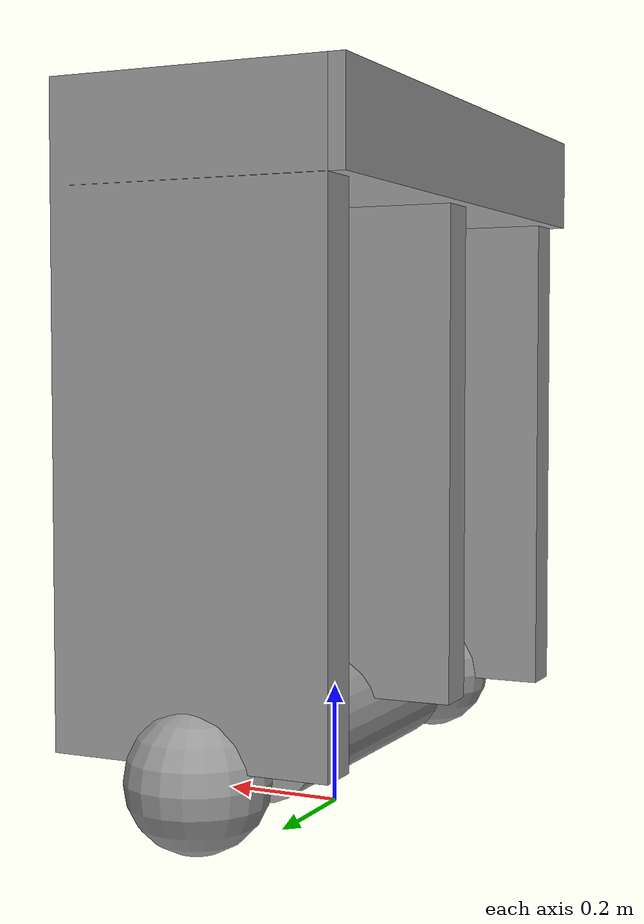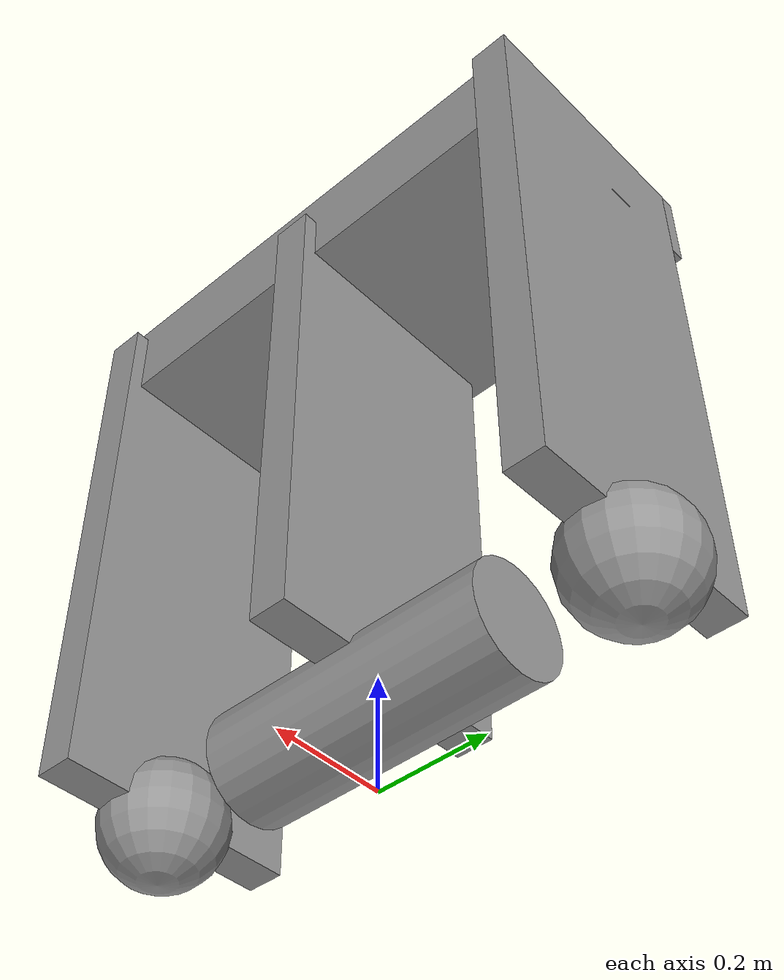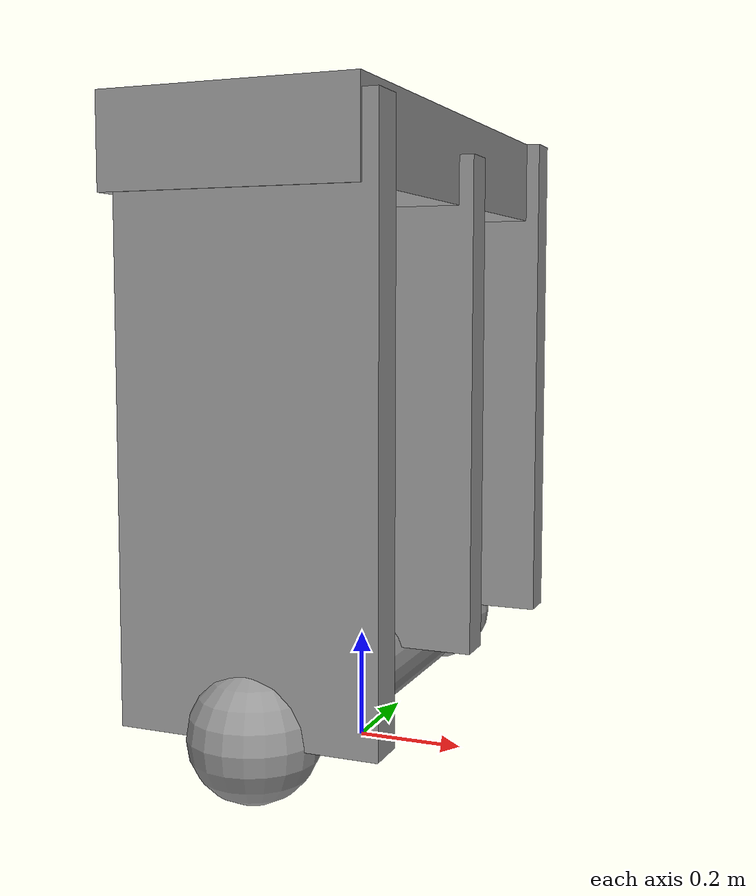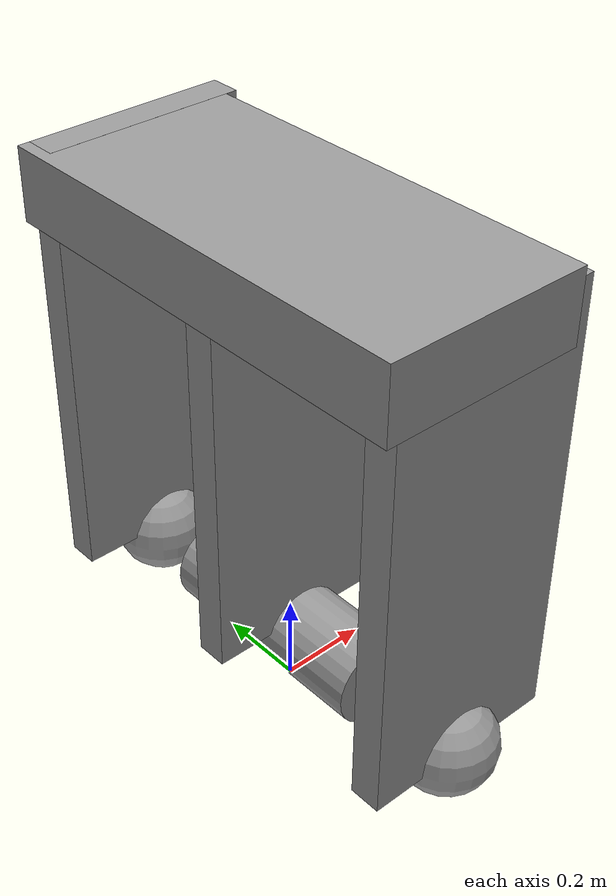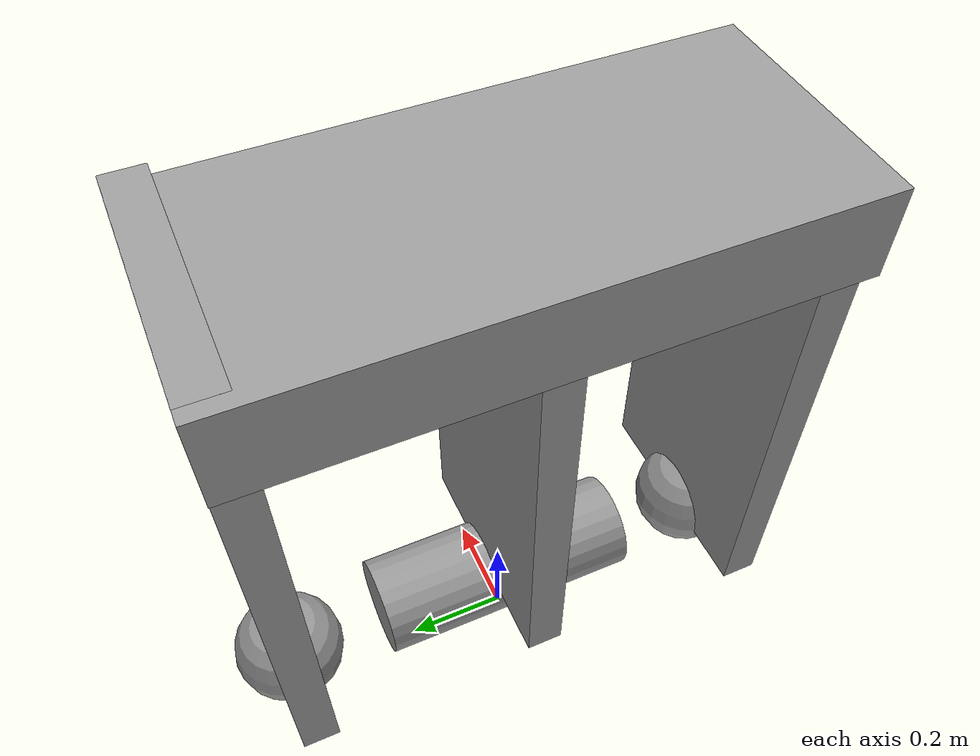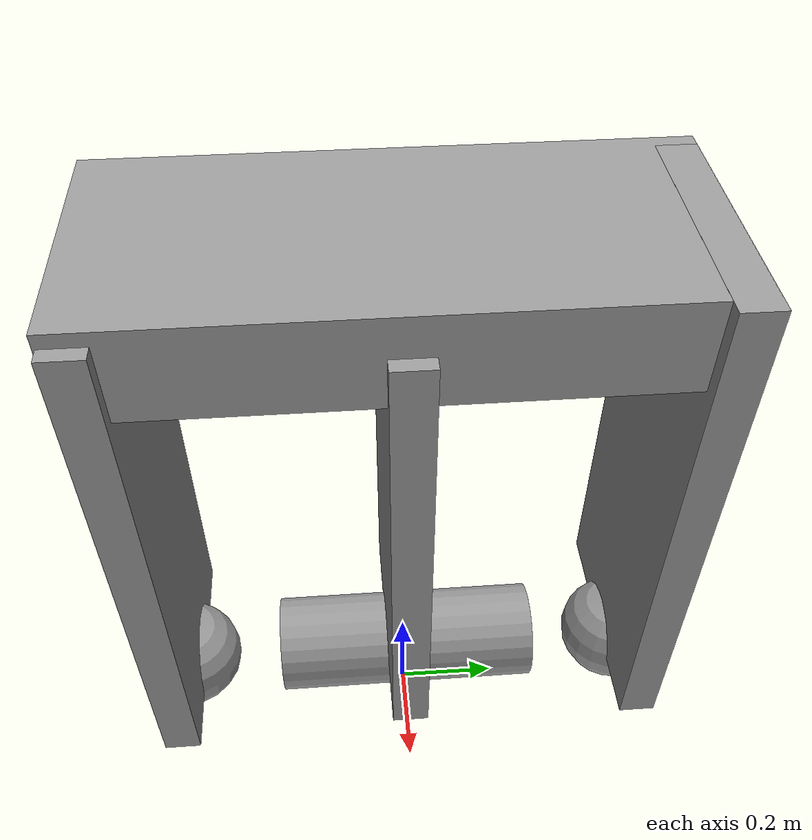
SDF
<?xml version='1.0'?>
<sdf version='1.5'>
  <model name='passive_walker3'>
    <pose>0 0 .5 0 0 1.57</pose>
    <link name='link_0'>
      <pose>-0.463051 -0.00381 0.144647 0 0 0</pose>
      <inertial>
        <mass>1</mass>
        <pose>0 0 0 0 -0 0</pose>
        <inertia>
          <ixx>0.001</ixx>
          <ixy>0</ixy>
          <ixz>0</ixz>
          <iyy>0.001</iyy>
          <iyz>0</iyz>
          <izz>0.001</izz>
        </inertia>
      </inertial>
      <self_collide>0</self_collide>
      <kinematic>0</kinematic>
      <visual name='visual'>
        <pose>0 0 0 0 -0 0</pose>
        <geometry>
          <box>
            <size>0.07 0.450331 1</size>
          </box>
        </geometry>
        <material>
          <lighting>1</lighting>
          <script>
            <uri>file://media/materials/scripts/gazebo.material</uri>
            <name>Gazebo/Grey</name>
          </script>
          <shader type='pixel'>
            <normal_map>__default__</normal_map>
          </shader>
          <ambient>0.3 0.3 0.3 1</ambient>
          <diffuse>0.7 0.7 0.7 1</diffuse>
          <specular>0.01 0.01 0.01 1</specular>
          <emissive>0 0 0 1</emissive>
        </material>
        <cast_shadows>1</cast_shadows>
        <transparency>0</transparency>
      </visual>
      <collision name='collision'>
        <laser_retro>0</laser_retro>
        <max_contacts>10</max_contacts>
        <pose>0 0 0 0 -0 0</pose>
        <geometry>
          <box>
            <size>0.07 0.450331 1</size>
          </box>
        </geometry>
        <surface>
          <friction>
            <ode>
              <mu>1</mu>
              <mu2>1</mu2>
              <fdir1>0 0 0</fdir1>
              <slip1>0</slip1>
              <slip2>0</slip2>
            </ode>
          </friction>
          <bounce>
            <restitution_coefficient>0</restitution_coefficient>
            <threshold>1e+06</threshold>
          </bounce>
          <contact>
            <collide_without_contact>0</collide_without_contact>
            <collide_without_contact_bitmask>1</collide_without_contact_bitmask>
            <collide_bitmask>1</collide_bitmask>
            <ode>
              <soft_cfm>0</soft_cfm>
              <soft_erp>0.2</soft_erp>
              <kp>1e+13</kp>
              <kd>1</kd>
              <max_vel>0.01</max_vel>
              <min_depth>0</min_depth>
            </ode>
            <bullet>
              <split_impulse>1</split_impulse>
              <split_impulse_penetration_threshold>-0.01</split_impulse_penetration_threshold>
              <soft_cfm>0</soft_cfm>
              <soft_erp>0.2</soft_erp>
              <kp>1e+13</kp>
              <kd>1</kd>
            </bullet>
          </contact>
        </surface>
      </collision>
    </link>
    <link name='link_0_clone'>
      <pose>0.462998 -0.00381 0.169173 0 0 0</pose>
      <inertial>
        <mass>1</mass>
        <pose>0 0 0 0 -0 0</pose>
        <inertia>
          <ixx>0.001</ixx>
          <ixy>0</ixy>
          <ixz>0</ixz>
          <iyy>0.001</iyy>
          <iyz>0</iyz>
          <izz>0.001</izz>
        </inertia>
      </inertial>
      <self_collide>0</self_collide>
      <kinematic>0</kinematic>
      <visual name='ModelPreview_1::link_0_clone::visual'>
        <pose>0 0 0 0 -0 0</pose>
        <geometry>
          <box>
            <size>0.07 0.450331 1</size>
          </box>
        </geometry>
        <material>
          <lighting>1</lighting>
          <script>
            <uri>file://media/materials/scripts/gazebo.material</uri>
            <name>Gazebo/Grey</name>
          </script>
          <shader type='pixel'>
            <normal_map>__default__</normal_map>
          </shader>
          <ambient>0.3 0.3 0.3 1</ambient>
          <diffuse>0.7 0.7 0.7 1</diffuse>
          <specular>0.01 0.01 0.01 1</specular>
          <emissive>0 0 0 1</emissive>
        </material>
        <cast_shadows>1</cast_shadows>
        <transparency>0</transparency>
      </visual>
      <collision name='collision'>
        <laser_retro>0</laser_retro>
        <max_contacts>10</max_contacts>
        <pose>0 0 0 0 -0 0</pose>
        <geometry>
          <box>
            <size>0.07 0.450331 1</size>
          </box>
        </geometry>
        <surface>
          <friction>
            <ode>
              <mu>1</mu>
              <mu2>1</mu2>
              <fdir1>0 0 0</fdir1>
              <slip1>0</slip1>
              <slip2>0</slip2>
            </ode>
          </friction>
          <bounce>
            <restitution_coefficient>0</restitution_coefficient>
            <threshold>1e+06</threshold>
          </bounce>
          <contact>
            <collide_without_contact>0</collide_without_contact>
            <collide_without_contact_bitmask>1</collide_without_contact_bitmask>
            <collide_bitmask>1</collide_bitmask>
            <ode>
              <soft_cfm>0</soft_cfm>
              <soft_erp>0.2</soft_erp>
              <kp>1e+13</kp>
              <kd>1</kd>
              <max_vel>0.01</max_vel>
              <min_depth>0</min_depth>
            </ode>
            <bullet>
              <split_impulse>1</split_impulse>
              <split_impulse_penetration_threshold>-0.01</split_impulse_penetration_threshold>
              <soft_cfm>0</soft_cfm>
              <soft_erp>0.2</soft_erp>
              <kp>1e+13</kp>
              <kd>1</kd>
            </bullet>
          </contact>
        </surface>
      </collision>
    </link>
    <link name='link_0_clone_clone'>
      <pose>-0.002065 0.02286 0.589088 4.2e-05 1.57 4.2e-05</pose>
      <inertial>
        <mass>1</mass>
        <pose>0 0 0 0 1.57 0</pose>
        <inertia>
          <ixx>1</ixx>
          <ixy>0</ixy>
          <ixz>0</ixz>
          <iyy>1</iyy>
          <iyz>0</iyz>
          <izz>1</izz>
        </inertia>
      </inertial>
      <self_collide>0</self_collide>
      <kinematic>0</kinematic>
      <visual name='ModelPreview_1::link_0_clone_clone::visual'>
        <pose>0 0 0 0 -0 0</pose>
        <geometry>
          <box>
            <size>0.159374 0.450331 1</size>
          </box>
        </geometry>
        <material>
          <lighting>1</lighting>
          <script>
            <uri>file://media/materials/scripts/gazebo.material</uri>
            <name>Gazebo/Grey</name>
          </script>
          <shader type='pixel'>
            <normal_map>__default__</normal_map>
          </shader>
          <ambient>0.3 0.3 0.3 1</ambient>
          <diffuse>0.7 0.7 0.7 1</diffuse>
          <specular>0.01 0.01 0.01 1</specular>
          <emissive>0 0 0 1</emissive>
        </material>
        <cast_shadows>1</cast_shadows>
        <transparency>0</transparency>
      </visual>
      <collision name='collision'>
        <laser_retro>0</laser_retro>
        <max_contacts>10</max_contacts>
        <pose>0 0 0 0 -0 0</pose>
        <geometry>
          <box>
            <size>0.159374 0.450331 1</size>
          </box>
        </geometry>
        <surface>
          <friction>
            <ode>
              <mu>1</mu>
              <mu2>1</mu2>
              <fdir1>0 0 0</fdir1>
              <slip1>0</slip1>
              <slip2>0</slip2>
            </ode>
          </friction>
          <bounce>
            <restitution_coefficient>0</restitution_coefficient>
            <threshold>1e+06</threshold>
          </bounce>
          <contact>
            <collide_without_contact>0</collide_without_contact>
            <collide_without_contact_bitmask>1</collide_without_contact_bitmask>
            <collide_bitmask>1</collide_bitmask>
            <ode>
              <soft_cfm>0</soft_cfm>
              <soft_erp>0.2</soft_erp>
              <kp>1e+13</kp>
              <kd>1</kd>
              <max_vel>0.01</max_vel>
              <min_depth>0</min_depth>
            </ode>
            <bullet>
              <split_impulse>1</split_impulse>
              <split_impulse_penetration_threshold>-0.01</split_impulse_penetration_threshold>
              <soft_cfm>0</soft_cfm>
              <soft_erp>0.2</soft_erp>
              <kp>1e+13</kp>
              <kd>1</kd>
            </bullet>
          </contact>
        </surface>
      </collision>
    </link>
    <link name='link_0_clone_clone_0'>
      <pose>-0.002065 -0.00381 0.144647 0 0 0</pose>
      <inertial>
        <mass>1</mass>
        <pose>0 0 0 0 -0 0</pose>
        <inertia>
          <ixx>1</ixx>
          <ixy>0</ixy>
          <ixz>0</ixz>
          <iyy>1</iyy>
          <iyz>0</iyz>
          <izz>1</izz>
        </inertia>
      </inertial>
      <self_collide>0</self_collide>
      <kinematic>0</kinematic>
      <visual name='ModelPreview_1::link_0_clone_clone_0::visual'>
        <pose>0 0 0 0 -0 0</pose>
        <geometry>
          <box>
            <size>0.07 0.450331 0.907569</size>
          </box>
        </geometry>
        <material>
          <lighting>1</lighting>
          <script>
            <uri>file://media/materials/scripts/gazebo.material</uri>
            <name>Gazebo/Grey</name>
          </script>
          <shader type='pixel'>
            <normal_map>__default__</normal_map>
          </shader>
          <ambient>0.3 0.3 0.3 1</ambient>
          <diffuse>0.7 0.7 0.7 1</diffuse>
          <specular>0.01 0.01 0.01 1</specular>
          <emissive>0 0 0 1</emissive>
        </material>
        <cast_shadows>1</cast_shadows>
        <transparency>0</transparency>
      </visual>
      <collision name='collision'>
        <laser_retro>0</laser_retro>
        <max_contacts>10</max_contacts>
        <pose>0 0 0 0 -0 0</pose>
        <geometry>
          <box>
            <size>0.07 0.450331 0.907569</size>
          </box>
        </geometry>
        <surface>
          <friction>
            <ode>
              <mu>1</mu>
              <mu2>1</mu2>
              <fdir1>0 0 0</fdir1>
              <slip1>0</slip1>
              <slip2>0</slip2>
            </ode>
          </friction>
          <bounce>
            <restitution_coefficient>0</restitution_coefficient>
            <threshold>1e+06</threshold>
          </bounce>
          <contact>
            <collide_without_contact>0</collide_without_contact>
            <collide_without_contact_bitmask>1</collide_without_contact_bitmask>
            <collide_bitmask>1</collide_bitmask>
            <ode>
              <soft_cfm>0</soft_cfm>
              <soft_erp>0.2</soft_erp>
              <kp>1e+13</kp>
              <kd>1</kd>
              <max_vel>0.01</max_vel>
              <min_depth>0</min_depth>
            </ode>
            <bullet>
              <split_impulse>1</split_impulse>
              <split_impulse_penetration_threshold>-0.01</split_impulse_penetration_threshold>
              <soft_cfm>0</soft_cfm>
              <soft_erp>0.2</soft_erp>
              <kp>1e+13</kp>
              <kd>1</kd>
            </bullet>
          </contact>
        </surface>
      </collision>
    </link>
    <link name='link_1'>
      <pose>0.004224 -0.00381 -0.340655 4.2e-05 1.57 4.2e-05</pose>
      <inertial>
        <mass>1</mass>
        <pose>0 0 0 0 -0 0</pose>
        <inertia>
          <ixx>1</ixx>
          <ixy>0</ixy>
          <ixz>0</ixz>
          <iyy>1</iyy>
          <iyz>0</iyz>
          <izz>1</izz>
        </inertia>
      </inertial>
      <self_collide>0</self_collide>
      <kinematic>0</kinematic>
      <visual name='visual'>
        <pose>0 0 0 0 -0 0</pose>
        <geometry>
          <cylinder>
            <radius>0.0983214</radius>
            <length>0.528185</length>
          </cylinder>
        </geometry>
        <material>
          <lighting>1</lighting>
          <script>
            <uri>file://media/materials/scripts/gazebo.material</uri>
            <name>Gazebo/Grey</name>
          </script>
          <shader type='pixel'>
            <normal_map>__default__</normal_map>
          </shader>
          <ambient>0.3 0.3 0.3 1</ambient>
          <diffuse>0.7 0.7 0.7 1</diffuse>
          <specular>0.01 0.01 0.01 1</specular>
          <emissive>0 0 0 1</emissive>
        </material>
        <cast_shadows>1</cast_shadows>
        <transparency>0</transparency>
      </visual>
      <collision name='collision'>
        <laser_retro>0</laser_retro>
        <max_contacts>10</max_contacts>
        <pose>0 0 0 0 -0 0</pose>
        <geometry>
          <cylinder>
            <radius>0.098321</radius>
            <length>0.528185</length>
          </cylinder>
        </geometry>
        <surface>
          <friction>
            <ode>
              <mu>1</mu>
              <mu2>1</mu2>
              <fdir1>0 0 0</fdir1>
              <slip1>0</slip1>
              <slip2>0</slip2>
            </ode>
          </friction>
          <bounce>
            <restitution_coefficient>0</restitution_coefficient>
            <threshold>1e+06</threshold>
          </bounce>
          <contact>
            <collide_without_contact>0</collide_without_contact>
            <collide_without_contact_bitmask>1</collide_without_contact_bitmask>
            <collide_bitmask>1</collide_bitmask>
            <ode>
              <soft_cfm>0</soft_cfm>
              <soft_erp>0.2</soft_erp>
              <kp>1e+13</kp>
              <kd>1</kd>
              <max_vel>0.01</max_vel>
              <min_depth>0</min_depth>
            </ode>
            <bullet>
              <split_impulse>1</split_impulse>
              <split_impulse_penetration_threshold>-0.01</split_impulse_penetration_threshold>
              <soft_cfm>0</soft_cfm>
              <soft_erp>0.2</soft_erp>
              <kp>1e+13</kp>
              <kd>1</kd>
            </bullet>
          </contact>
        </surface>
      </collision>
    </link>
    <link name='link_2'>
      <pose>-0.463051 -0.00381 -0.351547 0 0 0</pose>
      <inertial>
        <inertia>
          <ixx>1</ixx>
          <ixy>0</ixy>
          <ixz>0</ixz>
          <iyy>1</iyy>
          <iyz>0</iyz>
          <izz>1</izz>
        </inertia>
        <mass>1</mass>
      </inertial>
      <self_collide>0</self_collide>
      <kinematic>0</kinematic>
      <visual name='visual'>
        <pose>0 0 0 0 -0 0</pose>
        <geometry>
          <sphere>
            <radius>0.109423</radius>
          </sphere>
        </geometry>
        <material>
          <lighting>1</lighting>
          <script>
            <uri>file://media/materials/scripts/gazebo.material</uri>
            <name>Gazebo/Grey</name>
          </script>
          <shader type='pixel'/>
          <ambient>0.3 0.3 0.3 1</ambient>
          <diffuse>0.7 0.7 0.7 1</diffuse>
          <specular>0.01 0.01 0.01 1</specular>
          <emissive>0 0 0 1</emissive>
        </material>
        <cast_shadows>1</cast_shadows>
        <transparency>0</transparency>
      </visual>
      <collision name='collision'>
        <laser_retro>0</laser_retro>
        <max_contacts>10</max_contacts>
        <pose>0 0 0 0 -0 0</pose>
        <geometry>
          <sphere>
            <radius>0.109423</radius>
          </sphere>
        </geometry>
        <surface>
          <friction>
            <ode>
              <mu>1</mu>
              <mu2>1</mu2>
              <fdir1>0 0 0</fdir1>
              <slip1>0</slip1>
              <slip2>0</slip2>
            </ode>
          </friction>
          <bounce>
            <restitution_coefficient>0</restitution_coefficient>
            <threshold>1e+06</threshold>
          </bounce>
          <contact>
            <collide_without_contact>0</collide_without_contact>
            <collide_without_contact_bitmask>1</collide_without_contact_bitmask>
            <collide_bitmask>1</collide_bitmask>
            <ode>
              <soft_cfm>0</soft_cfm>
              <soft_erp>0.2</soft_erp>
              <kp>1e+13</kp>
              <kd>1</kd>
              <max_vel>0.01</max_vel>
              <min_depth>0</min_depth>
            </ode>
            <bullet>
              <split_impulse>1</split_impulse>
              <split_impulse_penetration_threshold>-0.01</split_impulse_penetration_threshold>
              <soft_cfm>0</soft_cfm>
              <soft_erp>0.2</soft_erp>
              <kp>1e+13</kp>
              <kd>1</kd>
            </bullet>
          </contact>
        </surface>
      </collision>
    </link>
    <link name='link_2_clone'>
      <pose>0.462998 -0.00381 -0.355353 0 0 0</pose>
      <inertial>
        <inertia>
          <ixx>1</ixx>
          <ixy>0</ixy>
          <ixz>0</ixz>
          <iyy>1</iyy>
          <iyz>0</iyz>
          <izz>1</izz>
        </inertia>
        <mass>1</mass>
      </inertial>
      <self_collide>0</self_collide>
      <kinematic>0</kinematic>
      <visual name='ModelPreview_1::link_2_clone::visual'>
        <pose>0 0 0 0 -0 0</pose>
        <geometry>
          <sphere>
            <radius>0.109423</radius>
          </sphere>
        </geometry>
        <material>
          <lighting>1</lighting>
          <script>
            <uri>file://media/materials/scripts/gazebo.material</uri>
            <name>Gazebo/Grey</name>
          </script>
          <shader type='pixel'/>
          <ambient>0.3 0.3 0.3 1</ambient>
          <diffuse>0.7 0.7 0.7 1</diffuse>
          <specular>0.01 0.01 0.01 1</specular>
          <emissive>0 0 0 1</emissive>
        </material>
        <cast_shadows>1</cast_shadows>
        <transparency>0</transparency>
      </visual>
      <collision name='collision'>
        <laser_retro>0</laser_retro>
        <max_contacts>10</max_contacts>
        <pose>0 0 0 0 -0 0</pose>
        <geometry>
          <sphere>
            <radius>0.109423</radius>
          </sphere>
        </geometry>
        <surface>
          <friction>
            <ode>
              <mu>1</mu>
              <mu2>1</mu2>
              <fdir1>0 0 0</fdir1>
              <slip1>0</slip1>
              <slip2>0</slip2>
            </ode>
          </friction>
          <bounce>
            <restitution_coefficient>0</restitution_coefficient>
            <threshold>1e+06</threshold>
          </bounce>
          <contact>
            <collide_without_contact>0</collide_without_contact>
            <collide_without_contact_bitmask>1</collide_without_contact_bitmask>
            <collide_bitmask>1</collide_bitmask>
            <ode>
              <soft_cfm>0</soft_cfm>
              <soft_erp>0.2</soft_erp>
              <kp>1e+13</kp>
              <kd>1</kd>
              <max_vel>0.01</max_vel>
              <min_depth>0</min_depth>
            </ode>
            <bullet>
              <split_impulse>1</split_impulse>
              <split_impulse_penetration_threshold>-0.01</split_impulse_penetration_threshold>
              <soft_cfm>0</soft_cfm>
              <soft_erp>0.2</soft_erp>
              <kp>1e+13</kp>
              <kd>1</kd>
            </bullet>
          </contact>
        </surface>
      </collision>
    </link>
    <joint name='link_0_JOINT_4' type='revolute'>
      <parent>passive_walker3::link_0</parent>
      <child>passive_walker3::link_0_clone_clone</child>
      <axis>
        <xyz>1 0 0</xyz>
        <use_parent_model_frame>0</use_parent_model_frame>
        <limit>
          <lower>-0</lower>
          <upper>0</upper>
          <effort>-1</effort>
          <velocity>-1</velocity>
        </limit>
        <dynamics>
          <spring_reference>0</spring_reference>
          <spring_stiffness>0</spring_stiffness>
          <damping>0</damping>
          <friction>0</friction>
        </dynamics>
      </axis>
      <pose>0 0 0 0 -0 0</pose>
      <physics>
        <ode>
          <cfm>0</cfm>
          <bounce>0</bounce>
          <velocity>0</velocity>
          <fudge_factor>0</fudge_factor>
          <limit>
            <cfm>0</cfm>
            <erp>0.2</erp>
          </limit>
          <suspension>
            <cfm>0</cfm>
            <erp>0.2</erp>
          </suspension>
        </ode>
      </physics>
    </joint>
    <joint name='link_0_clone_JOINT_5' type='revolute'>
      <parent>passive_walker3::link_0_clone</parent>
      <child>passive_walker3::link_0_clone_clone</child>
      <axis>
        <xyz>1 0 0</xyz>
        <use_parent_model_frame>0</use_parent_model_frame>
        <limit>
          <lower>-0</lower>
          <upper>0</upper>
          <effort>-1</effort>
          <velocity>-1</velocity>
        </limit>
        <dynamics>
          <spring_reference>0</spring_reference>
          <spring_stiffness>0</spring_stiffness>
          <damping>0</damping>
          <friction>0</friction>
        </dynamics>
      </axis>
      <pose>0 0 0 0 -0 0</pose>
      <physics>
        <ode>
          <cfm>0</cfm>
          <bounce>0</bounce>
          <velocity>0</velocity>
          <fudge_factor>0</fudge_factor>
          <limit>
            <cfm>0</cfm>
            <erp>0.2</erp>
          </limit>
          <suspension>
            <cfm>0</cfm>
            <erp>0.2</erp>
          </suspension>
        </ode>
      </physics>
    </joint>
    <joint name='link_0_clone_clone_0_JOINT_3' type='revolute'>
      <parent>passive_walker3::link_0_clone_clone_0</parent>
      <child>passive_walker3::link_0_clone_clone</child>
      <axis>
        <xyz>0 0 1</xyz>
        <use_parent_model_frame>0</use_parent_model_frame>
        <limit>
          <lower>-1.79769e+308</lower>
          <upper>1.79769e+308</upper>
          <effort>-1</effort>
          <velocity>-1</velocity>
        </limit>
        <dynamics>
          <spring_reference>0</spring_reference>
          <spring_stiffness>0</spring_stiffness>
          <damping>0</damping>
          <friction>0</friction>
        </dynamics>
      </axis>
      <pose>0 0 0 0 -0 0</pose>
      <physics>
        <ode>
          <cfm>0</cfm>
          <bounce>0</bounce>
          <velocity>0</velocity>
          <fudge_factor>0</fudge_factor>
          <limit>
            <cfm>0</cfm>
            <erp>0.2</erp>
          </limit>
          <suspension>
            <cfm>0</cfm>
            <erp>0.2</erp>
          </suspension>
        </ode>
      </physics>
    </joint>
    <joint name='link_1_JOINT_2' type='revolute'>
      <parent>passive_walker3::link_1</parent>
      <child>passive_walker3::link_0_clone_clone_0</child>
      <axis>
        <xyz>1 0 0</xyz>
        <use_parent_model_frame>0</use_parent_model_frame>
        <limit>
          <lower>-0</lower>
          <upper>0</upper>
          <effort>-1</effort>
          <velocity>-1</velocity>
        </limit>
        <dynamics>
          <spring_reference>0</spring_reference>
          <spring_stiffness>0</spring_stiffness>
          <damping>0</damping>
          <friction>0</friction>
        </dynamics>
      </axis>
      <pose>0 0 0 0 -0 0</pose>
      <physics>
        <ode>
          <cfm>0</cfm>
          <bounce>0</bounce>
          <velocity>0</velocity>
          <fudge_factor>0</fudge_factor>
          <limit>
            <cfm>0</cfm>
            <erp>0.2</erp>
          </limit>
          <suspension>
            <cfm>0</cfm>
            <erp>0.2</erp>
          </suspension>
        </ode>
      </physics>
    </joint>
    <joint name='link_2_JOINT_0' type='revolute'>
      <parent>passive_walker3::link_2</parent>
      <child>passive_walker3::link_0</child>
      <axis>
        <xyz>1 0 0</xyz>
        <use_parent_model_frame>0</use_parent_model_frame>
        <limit>
          <lower>0</lower>
          <upper>0</upper>
          <effort>-1</effort>
          <velocity>-1</velocity>
        </limit>
        <dynamics>
          <spring_reference>0</spring_reference>
          <spring_stiffness>0</spring_stiffness>
          <damping>0</damping>
          <friction>0</friction>
        </dynamics>
      </axis>
      <pose>0 0 0 0 -0 0</pose>
      <physics>
        <ode>
          <cfm>0</cfm>
          <bounce>0</bounce>
          <velocity>0</velocity>
          <fudge_factor>0</fudge_factor>
          <limit>
            <cfm>0</cfm>
            <erp>0.2</erp>
          </limit>
          <suspension>
            <cfm>0</cfm>
            <erp>0.2</erp>
          </suspension>
        </ode>
      </physics>
    </joint>
    <joint name='link_2_clone_JOINT_1' type='revolute'>
      <parent>passive_walker3::link_2_clone</parent>
      <child>passive_walker3::link_0_clone</child>
      <axis>
        <xyz>1 0 0</xyz>
        <use_parent_model_frame>0</use_parent_model_frame>
        <limit>
          <lower>-0</lower>
          <upper>0</upper>
          <effort>-1</effort>
          <velocity>-1</velocity>
        </limit>
        <dynamics>
          <spring_reference>0</spring_reference>
          <spring_stiffness>0</spring_stiffness>
          <damping>0</damping>
          <friction>0</friction>
        </dynamics>
      </axis>
      <pose>0 0 0 0 -0 0</pose>
      <physics>
        <ode>
          <cfm>0</cfm>
          <bounce>0</bounce>
          <velocity>0</velocity>
          <fudge_factor>0</fudge_factor>
          <limit>
            <cfm>0</cfm>
            <erp>0.2</erp>
          </limit>
          <suspension>
            <cfm>0</cfm>
            <erp>0.2</erp>
          </suspension>
        </ode>
      </physics>
    </joint>
    <static>0</static>
    <allow_auto_disable>1</allow_auto_disable>
  </model>
</sdf>
